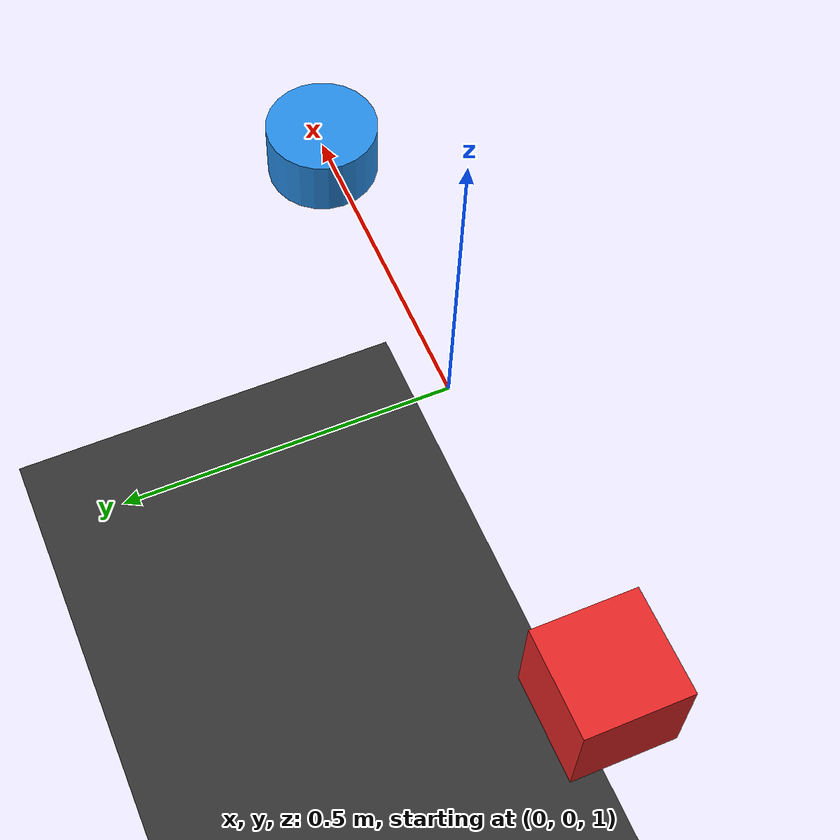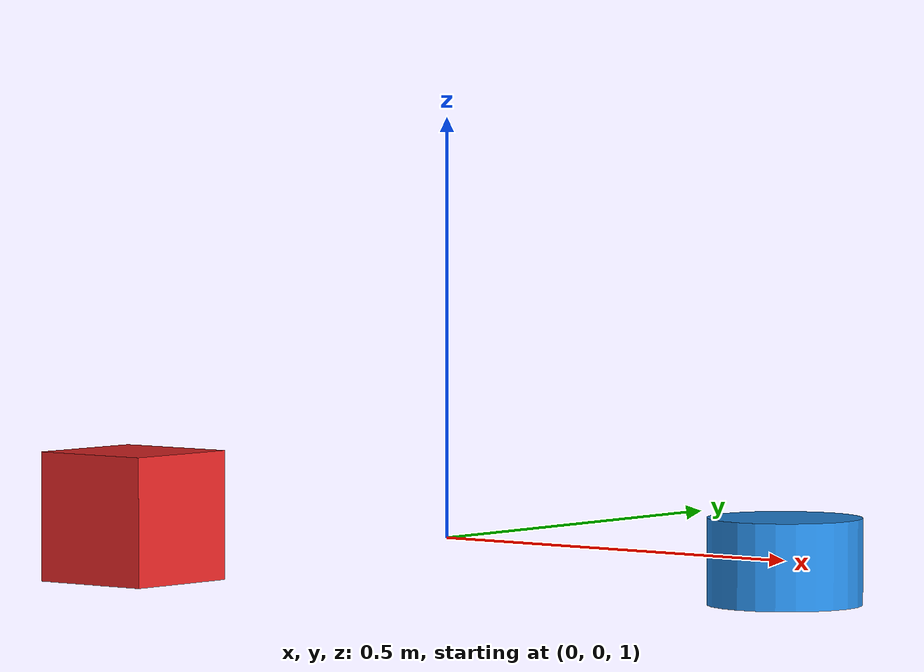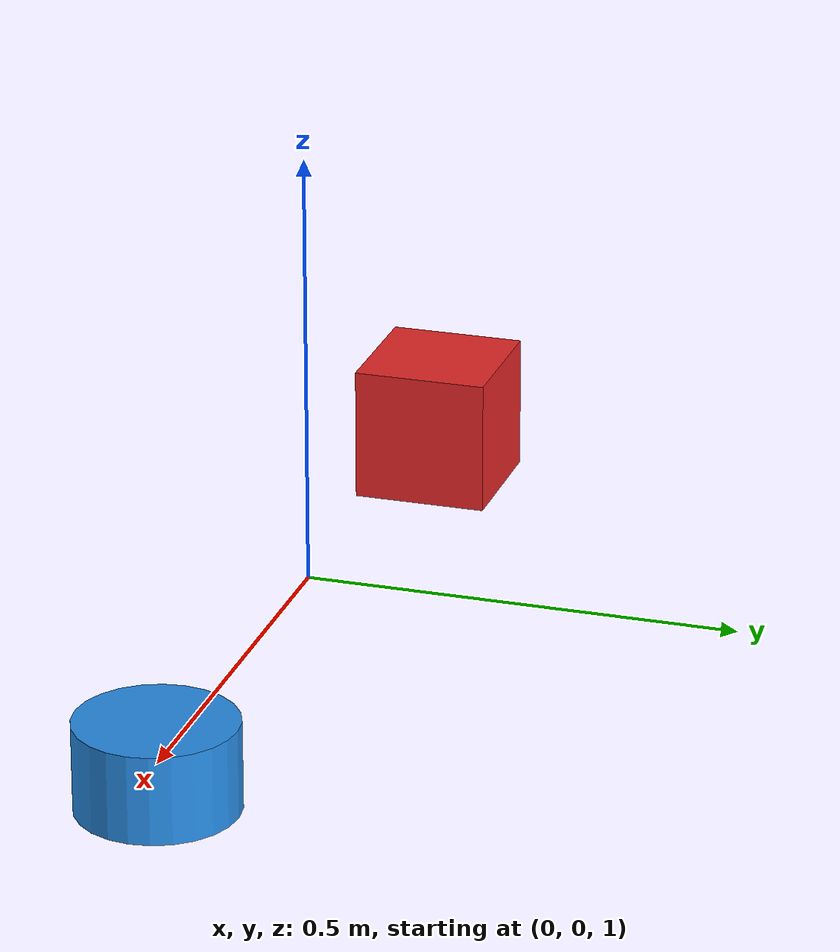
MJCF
<mujoco model="sensor_xy_sanity">
  <option gravity="0 0 0"/>

  <asset>
    <texture type="2d" name="grid" builtin="checker" rgb1=".15 .15 .15" rgb2=".25 .25 .25" width="300" height="300"/>
    <material name="grid" texture="grid" texrepeat="4 4" reflectance=".1"/>
  </asset>

  <worldbody>
    <light pos="0 0 3" diffuse="1 1 1"/>
    <geom type="plane" size="2 2 0.1" material="grid"/>

    <!-- SHOULDER: square block. raw_ax drives X, raw_ay drives Y. -->
    <body name="shoulder_shape" pos="-0.5 0 1">
      <joint name="shoulder_x" type="slide" axis="1 0 0" range="-0.4 0.4"/>
      <joint name="shoulder_y" type="slide" axis="0 1 0" range="-0.4 0.4"/>
      <geom type="box" size="0.08 0.08 0.08" rgba="0.9 0.15 0.15 1"/>
    </body>

    <!-- ELBOW: round disc, same X/Y mapping from its own raw ax/ay. -->
    <body name="elbow_shape" pos="0.5 0 1">
      <joint name="elbow_x" type="slide" axis="1 0 0" range="-0.4 0.4"/>
      <joint name="elbow_y" type="slide" axis="0 1 0" range="-0.4 0.4"/>
      <geom type="cylinder" size="0.09 0.05" rgba="0.15 0.55 0.9 1"/>
    </body>
  </worldbody>
</mujoco>
